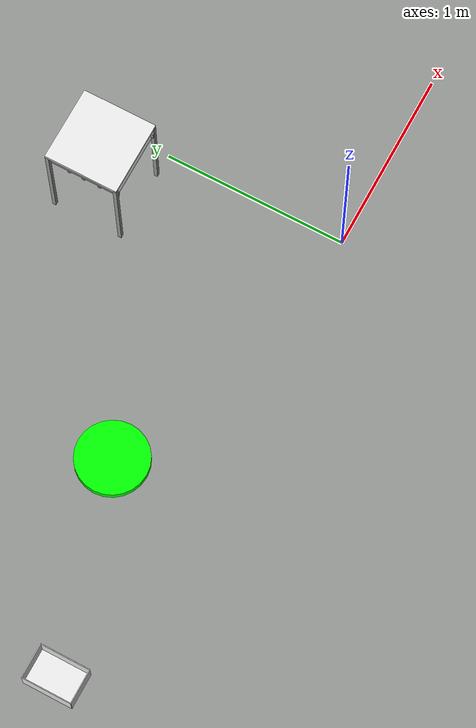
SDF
<sdf version="1.6">
 <world name="default">
  <model name="wrc_tall_table">
   <static>1</static>
   <link name="link">
    <inertial><mass>1</mass></inertial>
    <collision name="top">
     <pose>0 0 0.59 0 -0 0</pose>
     <geometry><box><size>0.4 0.4 0.02</size></box></geometry>
    </collision>
    <visual name="top_v">
     <pose>0 0 0.59 0 -0 0</pose>
     <geometry><box><size>0.4 0.4 0.02</size></box></geometry>
     <material>
      <script><uri>file://media/materials/scripts/gazebo.material</uri><name>Gazebo/White</name></script>
     </material>
    </visual>
    <collision name="leg1">
     <pose>0.19 0.19 0.285 0 -0 0</pose>
     <geometry><box><size>0.02 0.02 0.6</size></box></geometry>
    </collision>
    <visual name="leg1_v">
     <pose>0.19 0.19 0.285 0 -0 0</pose>
     <geometry><box><size>0.02 0.02 0.6</size></box></geometry>
     <material>
      <script><uri>file://media/materials/scripts/gazebo.material</uri><name>Gazebo/Gray</name></script>
     </material>
    </visual>
    <collision name="leg2">
     <pose>-0.19 0.19 0.285 0 -0 0</pose>
     <geometry><box><size>0.02 0.02 0.6</size></box></geometry>
    </collision>
    <visual name="leg2_v">
     <pose>-0.19 0.19 0.285 0 -0 0</pose>
     <geometry><box><size>0.02 0.02 0.6</size></box></geometry>
     <material>
      <script><uri>file://media/materials/scripts/gazebo.material</uri><name>Gazebo/Gray</name></script>
     </material>
    </visual>
    <collision name="leg3">
     <pose>0.19 -0.19 0.285 0 -0 0</pose>
     <geometry><box><size>0.02 0.02 0.6</size></box></geometry>
    </collision>
    <visual name="leg3_v">
     <pose>0.19 -0.19 0.285 0 -0 0</pose>
     <geometry><box><size>0.02 0.02 0.6</size></box></geometry>
     <material>
      <script><uri>file://media/materials/scripts/gazebo.material</uri><name>Gazebo/Gray</name></script>
     </material>
    </visual>
    <collision name="leg4">
     <pose>-0.19 -0.19 0.285 0 -0 0</pose>
     <geometry><box><size>0.02 0.02 0.6</size></box></geometry>
    </collision>
    <visual name="leg4_v">
     <pose>-0.19 -0.19 0.285 0 -0 0</pose>
     <geometry><box><size>0.02 0.02 0.6</size></box></geometry>
     <material>
      <script><uri>file://media/materials/scripts/gazebo.material</uri><name>Gazebo/Gray</name></script>
     </material>
    </visual>
    <collision name="side_panel1">
     <pose>0.175 0 0.52 0 -0 0</pose>
     <geometry><box><size>0.01 0.4 0.04</size></box></geometry>
    </collision>
    <visual name="side_panel1_v">
     <pose>0.175 0 0.52 0 -0 0</pose>
     <geometry><box><size>0.01 0.4 0.04</size></box></geometry>
     <material>
      <script><uri>file://media/materials/scripts/gazebo.material</uri><name>Gazebo/Gray</name></script>
     </material>
    </visual>
    <collision name="side_panel2">
     <pose>-0.175 0 0.52 0 -0 0</pose>
     <geometry><box><size>0.01 0.4 0.04</size></box></geometry>
    </collision>
    <visual name="side_panel2_v">
     <pose>-0.175 0 0.52 0 -0 0</pose>
     <geometry><box><size>0.01 0.4 0.04</size></box></geometry>
     <material>
      <script><uri>file://media/materials/scripts/gazebo.material</uri><name>Gazebo/Gray</name></script>
     </material>
    </visual>
    <collision name="bar1">
     <pose>0 0.2 0.49 0 1.57 0</pose>
     <geometry><cylinder><radius>0.01</radius><length>0.36</length></cylinder></geometry>
    </collision>
    <visual name="bar1_v">
     <pose>0 0.19 0.49 0 1.57 0</pose>
     <geometry><cylinder><radius>0.01</radius><length>0.36</length></cylinder></geometry>
     <material>
      <script><uri>file://media/materials/scripts/gazebo.material</uri><name>Gazebo/Gray</name></script>
     </material>
    </visual>
    <collision name="bar2">
     <pose>0 0.08 0.49 0 1.57 0</pose>
     <geometry><cylinder><radius>0.01</radius><length>0.36</length></cylinder></geometry>
    </collision>
    <visual name="bar2_v">
     <pose>0 0.08 0.49 0 1.57 0</pose>
     <geometry><cylinder><radius>0.01</radius><length>0.36</length></cylinder></geometry>
     <material>
      <script><uri>file://media/materials/scripts/gazebo.material</uri><name>Gazebo/Gray</name></script>
     </material>
    </visual>
    <collision name="bar3">
     <pose>0 0 0.49 0 1.57 0</pose>
     <geometry><cylinder><radius>0.01</radius><length>0.36</length></cylinder></geometry>
    </collision>
    <visual name="bar3_v">
     <pose>0 0 0.49 0 1.57 0</pose>
     <geometry><cylinder><radius>0.01</radius><length>0.36</length></cylinder></geometry>
     <material>
      <script><uri>file://media/materials/scripts/gazebo.material</uri><name>Gazebo/Gray</name></script>
     </material>
    </visual>
    <collision name="bar4">
     <pose>0 -0.08 0.49 0 1.57 0</pose>
     <geometry><cylinder><radius>0.01</radius><length>0.36</length></cylinder></geometry>
    </collision>
    <visual name="bar4_v">
     <pose>0 -0.09 0.49 0 1.57 0</pose>
     <geometry><cylinder><radius>0.01</radius><length>0.36</length></cylinder></geometry>
     <material>
      <script><uri>file://media/materials/scripts/gazebo.material</uri><name>Gazebo/Gray</name></script>
     </material>
    </visual>
    <collision name="bar5">
     <pose>0 -0.18 0.49 0 1.57 0</pose>
     <geometry><cylinder><radius>0.01</radius><length>0.36</length></cylinder></geometry>
    </collision>
    <visual name="bar5_v">
     <pose>0 -0.18 0.49 0 1.57 0</pose>
     <geometry><cylinder><radius>0.01</radius><length>0.36</length></cylinder></geometry>
     <material>
      <script><uri>file://media/materials/scripts/gazebo.material</uri><name>Gazebo/Gray</name></script>
     </material>
    </visual>
   </link>
   <pose>-0.3 1.2 0 0 -0 0</pose>
  </model>
  <model name="wrc_container_b">
   <static>1</static>
   <link name="link">
    <inertial><mass>1</mass></inertial>
    <collision name="bottom">
     <pose>0 0 0.002 0 -0 0</pose>
     <geometry><box><size>0.18 0.26 0.004</size></box></geometry>
    </collision>
    <visual name="bottom_v">
     <pose>0 0 0.002 0 -0 0</pose>
     <geometry><box><size>0.18 0.26 0.004</size></box></geometry>
     <material>
      <script><uri>file://media/materials/scripts/gazebo.material</uri><name>Gazebo/White</name></script>
     </material>
    </visual>
    <collision name="front">
     <pose>0 0.13 0.055 0 -0 0</pose>
     <geometry><box><size>0.18 0.004 0.11</size></box></geometry>
    </collision>
    <visual name="front_v">
     <pose>0 0.13 0.055 0 -0 0</pose>
     <geometry><box><size>0.18 0.004 0.11</size></box></geometry>
     <material>
      <script><uri>file://media/materials/scripts/gazebo.material</uri><name>Gazebo/White</name></script>
     </material>
    </visual>
    <collision name="back">
     <pose>0 -0.13 0.055 0 -0 0</pose>
     <geometry><box><size>0.18 0.004 0.11</size></box></geometry>
    </collision>
    <visual name="back_v">
     <pose>0 -0.13 0.055 0 -0 0</pose>
     <geometry><box><size>0.18 0.004 0.11</size></box></geometry>
     <material>
      <script><uri>file://media/materials/scripts/gazebo.material</uri><name>Gazebo/White</name></script>
     </material>
    </visual>
    <collision name="left">
     <pose>0.09 0 0.055 0 -0 0</pose>
     <geometry><box><size>0.004 0.26 0.11</size></box></geometry>
    </collision>
    <visual name="left_v">
     <pose>0.09 0 0.055 0 -0 0</pose>
     <geometry><box><size>0.004 0.26 0.11</size></box></geometry>
     <material>
      <script><uri>file://media/materials/scripts/gazebo.material</uri><name>Gazebo/White</name></script>
     </material>
    </visual>
    <collision name="right">
     <pose>-0.09 0 0.055 0 -0 0</pose>
     <geometry><box><size>0.004 0.26 0.11</size></box></geometry>
    </collision>
    <visual name="right_v">
     <pose>-0.09 0 0.055 0 -0 0</pose>
     <geometry><box><size>0.004 0.26 0.11</size></box></geometry>
     <material>
      <script><uri>file://media/materials/scripts/gazebo.material</uri><name>Gazebo/White</name></script>
     </material>
    </visual>
   </link>
   <pose>-2.7 0.1 0.4 0 -0 0</pose>
  </model>
  <model name="RotatingTable">
   <link name="link_0">
    <inertial>
     <mass>94.5653</mass>
     <inertia>
      <ixx>0.0933732</ixx>
      <ixy>0</ixy>
      <ixz>0</ixz>
      <iyy>0.251341</iyy>
      <iyz>0</iyz>
      <izz>0.344057</izz>
     </inertia>
    </inertial>
    <pose>-0.000397 -0.013044 -0.078289 0 -0 0</pose>
    <visual name="visual">
     <geometry><box><size>0.178473 0.10866 0.00646</size></box></geometry>
     <material>
      <lighting>1</lighting>
      <script><uri>file://media/materials/scripts/gazebo.material</uri><name>Gazebo/Grey</name></script>
      <shader type="pixel"><normal_map>__default__</normal_map></shader>
      <emissive>0 0 0 1</emissive>
      <ambient>0.3 0.3 0.3 1</ambient>
      <diffuse>0.7 0.7 0.7 1</diffuse>
      <specular>0.01 0.01 0.01 1</specular>
     </material>
    </visual>
    <collision name="collision">
     <geometry><box><size>0.178473 0.10866 0.00646</size></box></geometry>
     <surface>
      <friction>
       <ode><mu>1</mu><mu2>1</mu2><fdir1>0 0 0</fdir1><slip1>0</slip1><slip2>0</slip2></ode>
       <torsional>
        <coefficient>1</coefficient>
        <patch_radius>0</patch_radius>
        <surface_radius>0</surface_radius>
        <use_patch_radius>1</use_patch_radius>
        <ode><slip>0</slip></ode>
       </torsional>
      </friction>
      <bounce><restitution_coefficient>0</restitution_coefficient><threshold>1e+06</threshold></bounce>
      <contact>
       <collide_without_contact>0</collide_without_contact>
       <collide_without_contact_bitmask>1</collide_without_contact_bitmask>
       <collide_bitmask>1</collide_bitmask>
       <ode>
        <soft_cfm>0</soft_cfm>
        <soft_erp>0.2</soft_erp>
        <kp>1e+13</kp>
        <kd>1</kd>
        <max_vel>0.01</max_vel>
        <min_depth>0</min_depth>
       </ode>
       <bullet>
        <split_impulse>1</split_impulse>
        <split_impulse_penetration_threshold>-0.01</split_impulse_penetration_threshold>
        <soft_cfm>0</soft_cfm>
        <soft_erp>0.2</soft_erp>
        <kp>1e+13</kp>
        <kd>1</kd>
       </bullet>
      </contact>
     </surface>
    </collision>
   </link>
   <link name="link_1">
    <inertial>
     <mass>5.85081</mass>
     <inertia>
      <ixx>0.0552513</ixx>
      <ixy>0</ixy>
      <ixz>0</ixz>
      <iyy>0.0552513</iyy>
      <iyz>0</iyz>
      <izz>0.108729</izz>
     </inertia>
    </inertial>
    <pose>-0.002732 -0.016648 -0.039749 0 -0 0</pose>
    <visual name="visual">
     <geometry><cylinder><radius>0.192788</radius><length>0.0426455</length></cylinder></geometry>
     <material>
      <lighting>1</lighting>
      <script><uri>file://media/materials/scripts/gazebo.material</uri><name>Gazebo/Grey</name></script>
      <shader type="pixel"><normal_map>__default__</normal_map></shader>
      <emissive>0 0 0 1</emissive>
      <ambient>0 1 0 1</ambient>
      <diffuse>0.7 0.7 0.7 1</diffuse>
      <specular>0.01 0.01 0.01 1</specular>
     </material>
    </visual>
    <collision name="collision">
     <geometry><cylinder><radius>0.192788</radius><length>0.042645</length></cylinder></geometry>
     <surface>
      <friction>
       <ode><mu>41</mu><mu2>41</mu2><fdir1>0 0 0</fdir1><slip1>0</slip1><slip2>0</slip2></ode>
       <torsional>
        <coefficient>1</coefficient>
        <patch_radius>0</patch_radius>
        <surface_radius>0</surface_radius>
        <use_patch_radius>1</use_patch_radius>
        <ode><slip>0</slip></ode>
       </torsional>
      </friction>
      <bounce><restitution_coefficient>0</restitution_coefficient><threshold>1e+06</threshold></bounce>
      <contact>
       <collide_without_contact>0</collide_without_contact>
       <collide_without_contact_bitmask>1</collide_without_contact_bitmask>
       <collide_bitmask>1</collide_bitmask>
       <ode>
        <soft_cfm>0</soft_cfm>
        <soft_erp>0.2</soft_erp>
        <kp>1e+13</kp>
        <kd>1</kd>
        <max_vel>0.01</max_vel>
        <min_depth>0</min_depth>
       </ode>
       <bullet>
        <split_impulse>1</split_impulse>
        <split_impulse_penetration_threshold>-0.01</split_impulse_penetration_threshold>
        <soft_cfm>0</soft_cfm>
        <soft_erp>0.2</soft_erp>
        <kp>1e+13</kp>
        <kd>1</kd>
       </bullet>
      </contact>
     </surface>
    </collision>
   </link>
   <joint name="link_1_JOINT_0" type="revolute">
    <parent>link_1</parent>
    <child>link_0</child>
    <axis>
     <xyz>0 0 1</xyz>
     <use_parent_model_frame>0</use_parent_model_frame>
     <limit>
      <lower>-1.79769e+308</lower>
      <upper>1.79769e+308</upper>
      <effort>-1</effort>
      <velocity>-1</velocity>
     </limit>
     <dynamics>
      <spring_reference>0</spring_reference>
      <spring_stiffness>0</spring_stiffness>
      <damping>0</damping>
      <friction>-0.13</friction>
     </dynamics>
    </axis>
    <physics>
     <ode><limit><cfm>0</cfm><erp>0</erp></limit><suspension><cfm>0</cfm><erp>0.2</erp></suspension></ode>
    </physics>
   </joint>
   <static>0</static>
   <pose>-1.55235 0.477299 0.081519 0 -0 0</pose>
  </model>
 </world>
</sdf>
